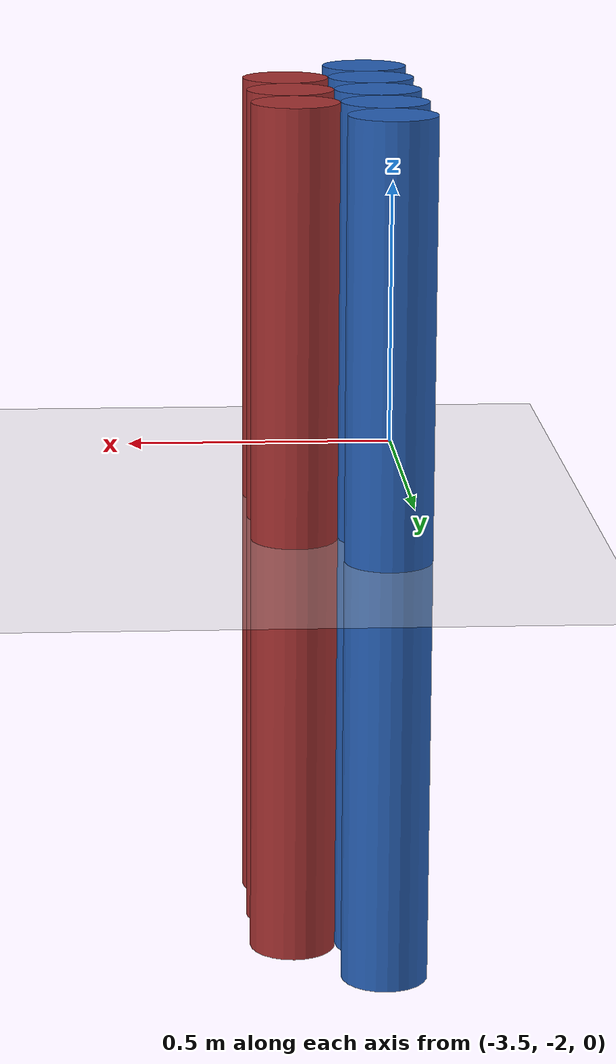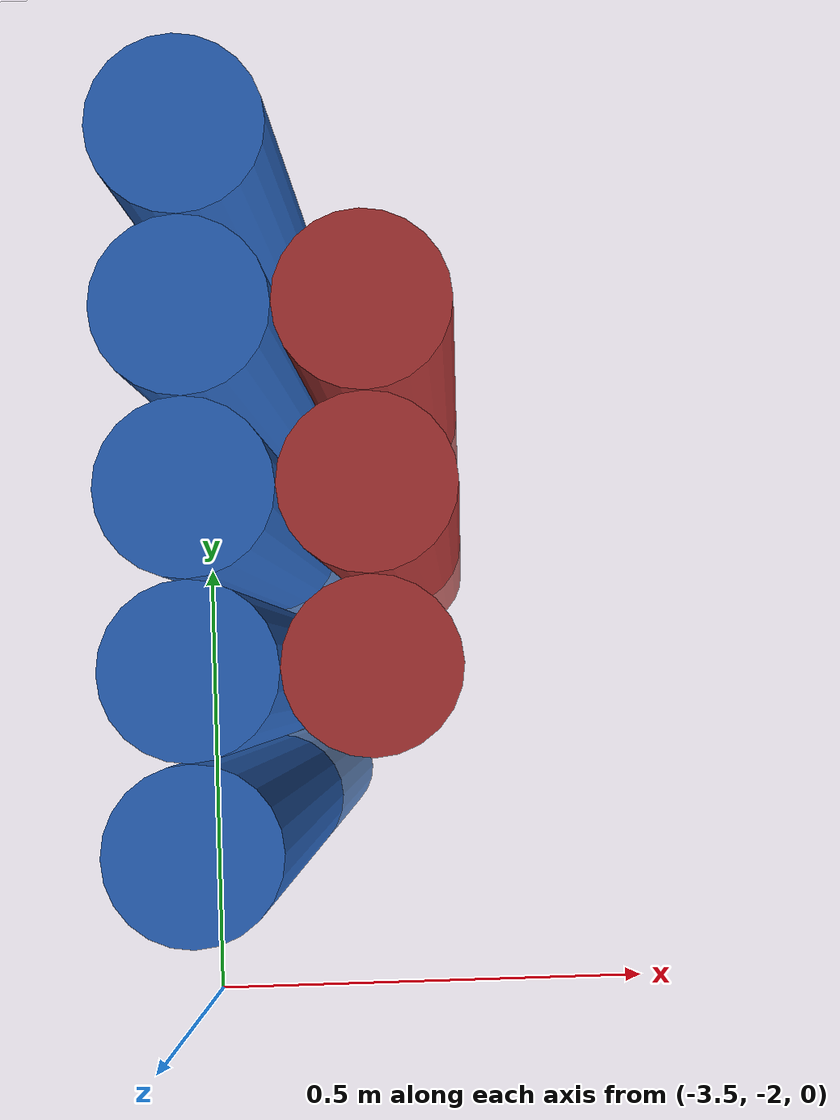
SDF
<sdf version="1.6">
 <world name="default">
  <model name="ground_plane">
   <static>1</static>
   <link name="link">
    <collision name="collision">
     <geometry><plane><normal>0 0 1</normal><size>100 100</size></plane></geometry>
     <surface><friction><ode><mu>100</mu><mu2>50</mu2></ode></friction></surface>
    </collision>
    <visual name="visual">
     <cast_shadows>0</cast_shadows>
     <geometry><plane><normal>0 0 1</normal><size>100 100</size></plane></geometry>
     <material>
      <script><uri>file://media/materials/scripts/gazebo.material</uri><name>Gazebo/Grey</name></script>
     </material>
    </visual>
   </link>
  </model>
  <model name="unit_cylinder_91">
   <static>1</static>
   <pose>-3.425000 -1.775000 0.000000 0.000000 0.000000 0.000000</pose>
   <link name="link">
    <inertial>
     <mass>1</mass>
     <inertia><ixx>0.145833</ixx><ixy>0</ixy><ixz>0</ixz><iyy>0.145833</iyy><iyz>0</iyz><izz>0.125</izz></inertia>
    </inertial>
    <collision name="collision">
     <geometry><cylinder><radius>0.075000</radius><length>1.5</length></cylinder></geometry>
    </collision>
    <visual name="visual">
     <geometry><cylinder><radius>0.075000</radius><length>1.5</length></cylinder></geometry>
     <material>
      <ambient>0.152000 0.379000 0.720000 1</ambient>
      <diffuse>0.152000 0.379000 0.720000 1</diffuse>
     </material>
     <material>
      <script><name>Gazebo/Grey</name><uri>file://media/materials/scripts/gazebo.material</uri></script>
     </material>
    </visual>
   </link>
  </model>
  <model name="unit_cylinder_93">
   <static>1</static>
   <pose>-3.425000 -1.625000 0.000000 0.000000 0.000000 0.000000</pose>
   <link name="link">
    <inertial>
     <mass>1</mass>
     <inertia><ixx>0.145833</ixx><ixy>0</ixy><ixz>0</ixz><iyy>0.145833</iyy><iyz>0</iyz><izz>0.125</izz></inertia>
    </inertial>
    <collision name="collision">
     <geometry><cylinder><radius>0.075000</radius><length>1.5</length></cylinder></geometry>
    </collision>
    <visual name="visual">
     <geometry><cylinder><radius>0.075000</radius><length>1.5</length></cylinder></geometry>
     <material>
      <ambient>0.152000 0.379000 0.720000 1</ambient>
      <diffuse>0.152000 0.379000 0.720000 1</diffuse>
     </material>
     <material>
      <script><name>Gazebo/Grey</name><uri>file://media/materials/scripts/gazebo.material</uri></script>
     </material>
    </visual>
   </link>
  </model>
  <model name="unit_cylinder_95">
   <static>1</static>
   <pose>-3.425000 -1.475000 0.000000 0.000000 0.000000 0.000000</pose>
   <link name="link">
    <inertial>
     <mass>1</mass>
     <inertia><ixx>0.145833</ixx><ixy>0</ixy><ixz>0</ixz><iyy>0.145833</iyy><iyz>0</iyz><izz>0.125</izz></inertia>
    </inertial>
    <collision name="collision">
     <geometry><cylinder><radius>0.075000</radius><length>1.5</length></cylinder></geometry>
    </collision>
    <visual name="visual">
     <geometry><cylinder><radius>0.075000</radius><length>1.5</length></cylinder></geometry>
     <material>
      <ambient>0.152000 0.379000 0.720000 1</ambient>
      <diffuse>0.152000 0.379000 0.720000 1</diffuse>
     </material>
     <material>
      <script><name>Gazebo/Grey</name><uri>file://media/materials/scripts/gazebo.material</uri></script>
     </material>
    </visual>
   </link>
  </model>
  <model name="unit_cylinder_97">
   <static>1</static>
   <pose>-3.425000 -1.325000 0.000000 0.000000 0.000000 0.000000</pose>
   <link name="link">
    <inertial>
     <mass>1</mass>
     <inertia><ixx>0.145833</ixx><ixy>0</ixy><ixz>0</ixz><iyy>0.145833</iyy><iyz>0</iyz><izz>0.125</izz></inertia>
    </inertial>
    <collision name="collision">
     <geometry><cylinder><radius>0.075000</radius><length>1.5</length></cylinder></geometry>
    </collision>
    <visual name="visual">
     <geometry><cylinder><radius>0.075000</radius><length>1.5</length></cylinder></geometry>
     <material>
      <ambient>0.152000 0.379000 0.720000 1</ambient>
      <diffuse>0.152000 0.379000 0.720000 1</diffuse>
     </material>
     <material>
      <script><name>Gazebo/Grey</name><uri>file://media/materials/scripts/gazebo.material</uri></script>
     </material>
    </visual>
   </link>
  </model>
  <model name="unit_cylinder_99">
   <static>1</static>
   <pose>-3.425000 -1.175000 0.000000 0.000000 0.000000 0.000000</pose>
   <link name="link">
    <inertial>
     <mass>1</mass>
     <inertia><ixx>0.145833</ixx><ixy>0</ixy><ixz>0</ixz><iyy>0.145833</iyy><iyz>0</iyz><izz>0.125</izz></inertia>
    </inertial>
    <collision name="collision">
     <geometry><cylinder><radius>0.075000</radius><length>1.5</length></cylinder></geometry>
    </collision>
    <visual name="visual">
     <geometry><cylinder><radius>0.075000</radius><length>1.5</length></cylinder></geometry>
     <material>
      <ambient>0.152000 0.379000 0.720000 1</ambient>
      <diffuse>0.152000 0.379000 0.720000 1</diffuse>
     </material>
     <material>
      <script><name>Gazebo/Grey</name><uri>file://media/materials/scripts/gazebo.material</uri></script>
     </material>
    </visual>
   </link>
  </model>
  <model name="unit_cylinder_209">
   <static>1</static>
   <pose>-3.425000 -1.775000 0.000000 0.000000 0.000000 0.000000</pose>
   <link name="link">
    <inertial>
     <mass>1</mass>
     <inertia><ixx>0.145833</ixx><ixy>0</ixy><ixz>0</ixz><iyy>0.145833</iyy><iyz>0</iyz><izz>0.125</izz></inertia>
    </inertial>
    <collision name="collision">
     <geometry><cylinder><radius>0.075000</radius><length>1.5</length></cylinder></geometry>
    </collision>
    <visual name="visual">
     <geometry><cylinder><radius>0.075000</radius><length>1.5</length></cylinder></geometry>
     <material>
      <ambient>0.152000 0.379000 0.720000 1</ambient>
      <diffuse>0.152000 0.379000 0.720000 1</diffuse>
     </material>
     <material>
      <script><name>Gazebo/Grey</name><uri>file://media/materials/scripts/gazebo.material</uri></script>
     </material>
    </visual>
   </link>
  </model>
  <model name="unit_cylinder_210">
   <static>1</static>
   <pose>-3.425000 -1.625000 0.000000 0.000000 0.000000 0.000000</pose>
   <link name="link">
    <inertial>
     <mass>1</mass>
     <inertia><ixx>0.145833</ixx><ixy>0</ixy><ixz>0</ixz><iyy>0.145833</iyy><iyz>0</iyz><izz>0.125</izz></inertia>
    </inertial>
    <collision name="collision">
     <geometry><cylinder><radius>0.075000</radius><length>1.5</length></cylinder></geometry>
    </collision>
    <visual name="visual">
     <geometry><cylinder><radius>0.075000</radius><length>1.5</length></cylinder></geometry>
     <material>
      <ambient>0.152000 0.379000 0.720000 1</ambient>
      <diffuse>0.152000 0.379000 0.720000 1</diffuse>
     </material>
     <material>
      <script><name>Gazebo/Grey</name><uri>file://media/materials/scripts/gazebo.material</uri></script>
     </material>
    </visual>
   </link>
  </model>
  <model name="unit_cylinder_211">
   <static>1</static>
   <pose>-3.425000 -1.475000 0.000000 0.000000 0.000000 0.000000</pose>
   <link name="link">
    <inertial>
     <mass>1</mass>
     <inertia><ixx>0.145833</ixx><ixy>0</ixy><ixz>0</ixz><iyy>0.145833</iyy><iyz>0</iyz><izz>0.125</izz></inertia>
    </inertial>
    <collision name="collision">
     <geometry><cylinder><radius>0.075000</radius><length>1.5</length></cylinder></geometry>
    </collision>
    <visual name="visual">
     <geometry><cylinder><radius>0.075000</radius><length>1.5</length></cylinder></geometry>
     <material>
      <ambient>0.152000 0.379000 0.720000 1</ambient>
      <diffuse>0.152000 0.379000 0.720000 1</diffuse>
     </material>
     <material>
      <script><name>Gazebo/Grey</name><uri>file://media/materials/scripts/gazebo.material</uri></script>
     </material>
    </visual>
   </link>
  </model>
  <model name="unit_cylinder_212">
   <static>1</static>
   <pose>-3.425000 -1.325000 0.000000 0.000000 0.000000 0.000000</pose>
   <link name="link">
    <inertial>
     <mass>1</mass>
     <inertia><ixx>0.145833</ixx><ixy>0</ixy><ixz>0</ixz><iyy>0.145833</iyy><iyz>0</iyz><izz>0.125</izz></inertia>
    </inertial>
    <collision name="collision">
     <geometry><cylinder><radius>0.075000</radius><length>1.5</length></cylinder></geometry>
    </collision>
    <visual name="visual">
     <geometry><cylinder><radius>0.075000</radius><length>1.5</length></cylinder></geometry>
     <material>
      <ambient>0.152000 0.379000 0.720000 1</ambient>
      <diffuse>0.152000 0.379000 0.720000 1</diffuse>
     </material>
     <material>
      <script><name>Gazebo/Grey</name><uri>file://media/materials/scripts/gazebo.material</uri></script>
     </material>
    </visual>
   </link>
  </model>
  <model name="unit_cylinder_259">
   <static>1</static>
   <pose>-3.275000 -1.625000 0.000000 0.000000 0.000000 0.000000</pose>
   <link name="link">
    <inertial>
     <mass>1</mass>
     <inertia><ixx>0.145833</ixx><ixy>0</ixy><ixz>0</ixz><iyy>0.145833</iyy><iyz>0</iyz><izz>0.125</izz></inertia>
    </inertial>
    <collision name="collision">
     <geometry><cylinder><radius>0.075000</radius><length>1.5</length></cylinder></geometry>
    </collision>
    <visual name="visual">
     <geometry><cylinder><radius>0.075000</radius><length>1.5</length></cylinder></geometry>
     <material>
      <ambient>0.648000 0.192000 0.192000 1</ambient>
      <diffuse>0.648000 0.192000 0.192000 1</diffuse>
     </material>
     <material>
      <script><name>Gazebo/Grey</name><uri>file://media/materials/scripts/gazebo.material</uri></script>
     </material>
    </visual>
   </link>
  </model>
  <model name="unit_cylinder_260">
   <static>1</static>
   <pose>-3.275000 -1.475000 0.000000 0.000000 0.000000 0.000000</pose>
   <link name="link">
    <inertial>
     <mass>1</mass>
     <inertia><ixx>0.145833</ixx><ixy>0</ixy><ixz>0</ixz><iyy>0.145833</iyy><iyz>0</iyz><izz>0.125</izz></inertia>
    </inertial>
    <collision name="collision">
     <geometry><cylinder><radius>0.075000</radius><length>1.5</length></cylinder></geometry>
    </collision>
    <visual name="visual">
     <geometry><cylinder><radius>0.075000</radius><length>1.5</length></cylinder></geometry>
     <material>
      <ambient>0.648000 0.192000 0.192000 1</ambient>
      <diffuse>0.648000 0.192000 0.192000 1</diffuse>
     </material>
     <material>
      <script><name>Gazebo/Grey</name><uri>file://media/materials/scripts/gazebo.material</uri></script>
     </material>
    </visual>
   </link>
  </model>
  <model name="unit_cylinder_261">
   <static>1</static>
   <pose>-3.275000 -1.325000 0.000000 0.000000 0.000000 0.000000</pose>
   <link name="link">
    <inertial>
     <mass>1</mass>
     <inertia><ixx>0.145833</ixx><ixy>0</ixy><ixz>0</ixz><iyy>0.145833</iyy><iyz>0</iyz><izz>0.125</izz></inertia>
    </inertial>
    <collision name="collision">
     <geometry><cylinder><radius>0.075000</radius><length>1.5</length></cylinder></geometry>
    </collision>
    <visual name="visual">
     <geometry><cylinder><radius>0.075000</radius><length>1.5</length></cylinder></geometry>
     <material>
      <ambient>0.648000 0.192000 0.192000 1</ambient>
      <diffuse>0.648000 0.192000 0.192000 1</diffuse>
     </material>
     <material>
      <script><name>Gazebo/Grey</name><uri>file://media/materials/scripts/gazebo.material</uri></script>
     </material>
    </visual>
   </link>
  </model>
 </world>
</sdf>
